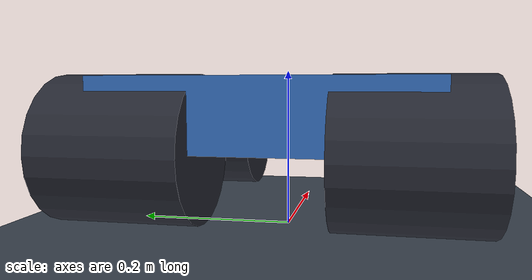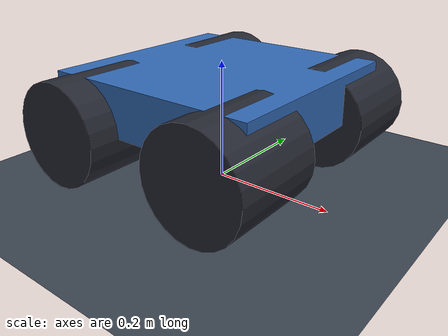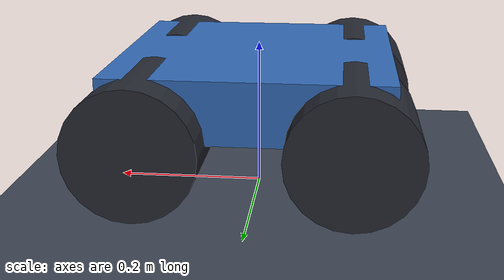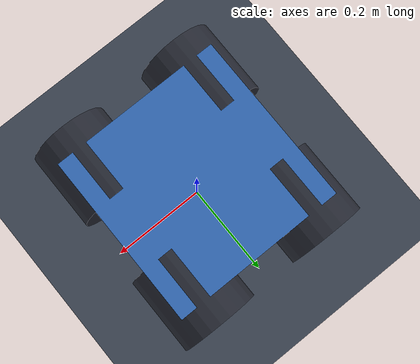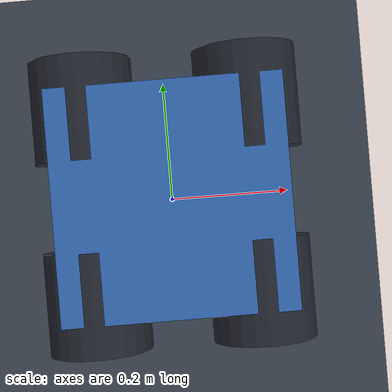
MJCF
<mujoco model="built_mobile_base_5seg">
  <compiler angle="radian" autolimits="true"/>
  <option timestep="0.002" gravity="0 0 -9.81"/>
  <visual>
    <headlight ambient="0.45 0.45 0.48" diffuse="0.65 0.65 0.68" specular="0.22 0.22 0.22"/>
    <quality shadowsize="4096"/>
    <map znear="0.01" zfar="60"/>
  </visual>
  <default>
    <joint damping="0.8" armature="0.01"/>
    <geom friction="1 0.05 0.001"/>
  </default>
  <asset>
    <texture name="skybox" type="skybox" builtin="gradient" rgb1="0.16 0.18 0.23" rgb2="0.03 0.04 0.06" width="512" height="512"/>
    <texture name="grid" type="2d" builtin="checker" rgb1="0.21 0.24 0.29" rgb2="0.26 0.30 0.35" width="300" height="300"/>
    <material name="grid" texture="grid" texrepeat="6 6" specular="0.1" shininess="0.1" reflectance="0.02"/>
    <material name="mat_body" rgba="0.84 0.86 0.89 1" specular="0.35" shininess="0.45" reflectance="0.05"/>
    <material name="mat_joint" rgba="0.15 0.16 0.20 1" specular="0.6" shininess="0.7" reflectance="0.1"/>
    <material name="mat_accent" rgba="0.92 0.47 0.13 1" specular="0.45" shininess="0.55"/>
    <material name="mat_ee" rgba="0.22 0.24 0.29 1" specular="0.5" shininess="0.6"/>
    <material name="mat_alu" rgba="0.78 0.80 0.84 1" specular="0.55" shininess="0.5" reflectance="0.12"/>
    <material name="mat_steel" rgba="0.34 0.36 0.40 1" specular="0.7" shininess="0.7" reflectance="0.18"/>
    <material name="mat_cf" rgba="0.11 0.12 0.14 1" specular="0.45" shininess="0.4" reflectance="0.06"/>
    <material name="mat_ti" rgba="0.60 0.60 0.65 1" specular="0.5" shininess="0.55" reflectance="0.1"/>
    <material name="mat_shell" rgba="0.20 0.42 0.72 1" specular="0.4" shininess="0.5" reflectance="0.05"/>
    <material name="mat_metal" rgba="0.47 0.49 0.53 1" specular="0.78" shininess="0.78" reflectance="0.22"/>
    <material name="mat_rubber" rgba="0.13 0.13 0.15 1" specular="0.15" shininess="0.15"/>
  </asset>
  <worldbody>
    <light name="key" pos="1.6 -1.1 3.0" dir="-0.45 0.32 -1" diffuse="0.55 0.55 0.58" specular="0.25 0.25 0.25"/>
    <light name="fill" pos="-2.0 1.6 2.2" dir="0.5 -0.42 -1" diffuse="0.22 0.22 0.26"/>
    <geom name="floor" type="plane" size="3 3 0.1" material="grid"/>
    <body name="chassis" pos="0.00000 0.00000 0.11200">
      <freejoint name="chassis_free"/>
      <geom name="chassis_geom" type="box" pos="0 0 0.04000" size="0.18000 0.18000 0.04000" mass="3.00000" material="mat_shell"/>
      <body name="wheel_0" pos="0.13000 0.15000 0.00000" euler="1.57080 0.00000 0.00000">
        <joint name="wheel_0_joint" type="hinge" axis="0.0000 0.0000 1.0000"/>
        <geom name="wheel_0_geom" type="cylinder" fromto="0 0 0 0 0 0.04000" size="0.06000" mass="0.30000" material="mat_metal"/>
        <geom name="wheel_0_motor" type="cylinder" fromto="-0.00000 -0.00000 -0.08000 0.00000 0.00000 0.08000" size="0.08200" material="mat_joint" mass="0" contype="0" conaffinity="0"/>
      </body>

      <body name="wheel_1" pos="0.13000 -0.15000 0.00000" euler="1.57080 0.00000 0.00000">
        <joint name="wheel_1_joint" type="hinge" axis="0.0000 0.0000 1.0000"/>
        <geom name="wheel_1_geom" type="cylinder" fromto="0 0 0 0 0 0.04000" size="0.06000" mass="0.30000" material="mat_metal"/>
        <geom name="wheel_1_motor" type="cylinder" fromto="-0.00000 -0.00000 -0.08000 0.00000 0.00000 0.08000" size="0.08200" material="mat_joint" mass="0" contype="0" conaffinity="0"/>
      </body>

      <body name="wheel_2" pos="-0.13000 0.15000 0.00000" euler="1.57080 0.00000 0.00000">
        <joint name="wheel_2_joint" type="hinge" axis="0.0000 0.0000 1.0000"/>
        <geom name="wheel_2_geom" type="cylinder" fromto="0 0 0 0 0 0.04000" size="0.06000" mass="0.30000" material="mat_metal"/>
        <geom name="wheel_2_motor" type="cylinder" fromto="-0.00000 -0.00000 -0.08000 0.00000 0.00000 0.08000" size="0.08200" material="mat_joint" mass="0" contype="0" conaffinity="0"/>
      </body>

      <body name="wheel_3" pos="-0.13000 -0.15000 0.00000" euler="1.57080 0.00000 0.00000">
        <joint name="wheel_3_joint" type="hinge" axis="0.0000 0.0000 1.0000"/>
        <geom name="wheel_3_geom" type="cylinder" fromto="0 0 0 0 0 0.04000" size="0.06000" mass="0.30000" material="mat_metal"/>
        <geom name="wheel_3_motor" type="cylinder" fromto="-0.00000 -0.00000 -0.08000 0.00000 0.00000 0.08000" size="0.08200" material="mat_joint" mass="0" contype="0" conaffinity="0"/>
        <site name="ee_site" pos="0 0 0.04000" size="0.01"/>
      </body>

    </body>
  </worldbody>
  <actuator>
    <motor name="wheel_0_motor" joint="wheel_0_joint" gear="1" forcerange="-8.00 8.00"/>
    <motor name="wheel_1_motor" joint="wheel_1_joint" gear="1" forcerange="-8.00 8.00"/>
    <motor name="wheel_2_motor" joint="wheel_2_joint" gear="1" forcerange="-8.00 8.00"/>
    <motor name="wheel_3_motor" joint="wheel_3_joint" gear="1" forcerange="-8.00 8.00"/>
  </actuator>
</mujoco>
